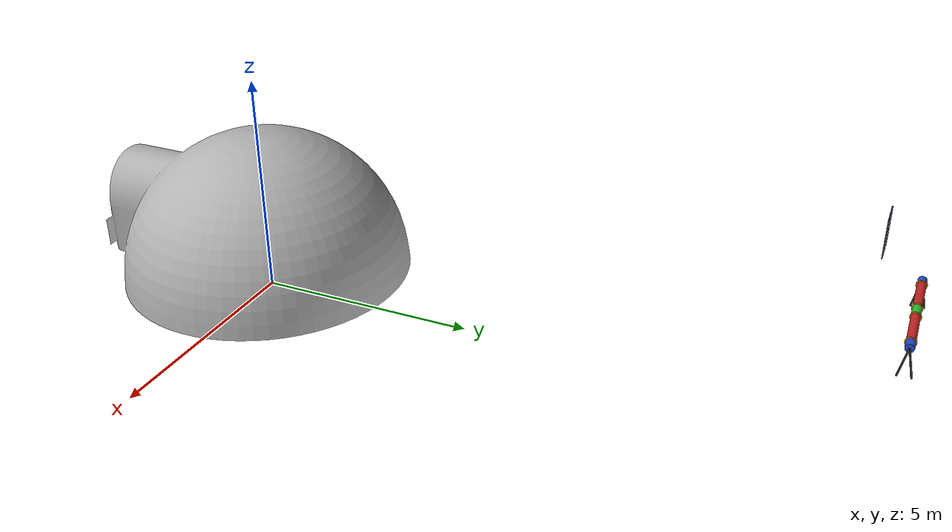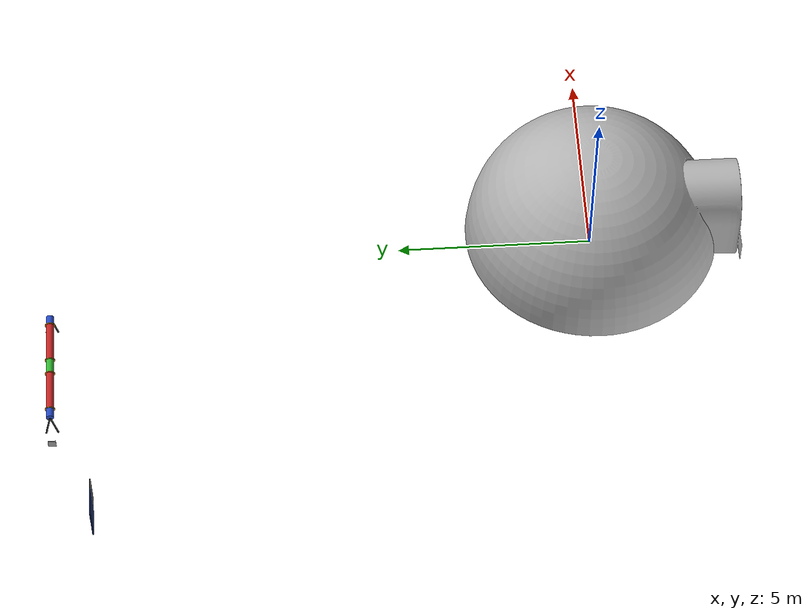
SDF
<sdf version="1.9">
 <world name="moon">
  <gravity>0 0 -9.8</gravity>
  <physics name="physics" type="dart">
   <max_step_size>0.01</max_step_size>
   <real_time_factor>1.0</real_time_factor>
  </physics>
  <light type="directional" name="sun">
   <pose>0 0 10000 0 0 0</pose>
   <diffuse>1.0 1.0 1.0 1.0</diffuse>
   <specular>0.2 0.2 0.2 1.0</specular>
   <attenuation>
    <range>100000</range>
    <constant>0.9</constant>
    <linear>0.01</linear>
    <quadratic>0.001</quadratic>
   </attenuation>
   <direction>-0.5 0.1 -1.0</direction>
  </light>
  <model name="moon_airlock">
   <static>true</static>
   <pose>0 0 00.5 1.5708 0 -1.5708</pose>
   <link name="airlock_link">
    <visual name="airlock_visual">
     <geometry>
      <mesh><uri>../models/gale_crater_patch2/meshes/dome.obj</uri><scale>0.82 0.82 0.82</scale></mesh>
     </geometry>
    </visual>
    <collision name="airlock_collision"><geometry><box><size>3.0 3.0 2.0</size></box></geometry></collision>
   </link>
  </model>
  <model name="arc26_pipe_collaboration_mission">
   <pose>-5.0 14.0 0 0 0 0</pose>
   <static>true</static>
   <link name="left_support">
    <visual name="left_leg_outer_visual">
     <pose>0 -0.075 0.35 -0.211 0 0</pose>
     <geometry><cylinder><radius>0.02</radius><length>0.716</length></cylinder></geometry>
     <material><ambient>0.15 0.15 0.15 1</ambient><diffuse>0.2 0.2 0.2 1</diffuse></material>
    </visual>
    <collision name="left_leg_outer_collision">
     <pose>0 -0.075 0.35 -0.211 0 0</pose>
     <geometry><cylinder><radius>0.02</radius><length>0.716</length></cylinder></geometry>
    </collision>
    <visual name="left_leg_inner_visual">
     <pose>0 0.075 0.35 0.211 0 0</pose>
     <geometry><cylinder><radius>0.02</radius><length>0.716</length></cylinder></geometry>
     <material><ambient>0.15 0.15 0.15 1</ambient><diffuse>0.2 0.2 0.2 1</diffuse></material>
    </visual>
    <collision name="left_leg_inner_collision">
     <pose>0 0.075 0.35 0.211 0 0</pose>
     <geometry><cylinder><radius>0.02</radius><length>0.716</length></cylinder></geometry>
    </collision>
   </link>
   <link name="right_support">
    <pose>3.0 0 0 0 0 0</pose>
    <visual name="right_leg_outer_visual">
     <pose>0 -0.075 0.35 -0.211 0 0</pose>
     <geometry><cylinder><radius>0.02</radius><length>0.716</length></cylinder></geometry>
     <material><ambient>0.15 0.15 0.15 1</ambient><diffuse>0.2 0.2 0.2 1</diffuse></material>
    </visual>
    <collision name="right_leg_outer_collision">
     <pose>0 -0.075 0.35 -0.211 0 0</pose>
     <geometry><cylinder><radius>0.02</radius><length>0.716</length></cylinder></geometry>
    </collision>
    <visual name="right_leg_inner_visual">
     <pose>0 0.075 0.35 0.211 0 0</pose>
     <geometry><cylinder><radius>0.02</radius><length>0.716</length></cylinder></geometry>
     <material><ambient>0.15 0.15 0.15 1</ambient><diffuse>0.2 0.2 0.2 1</diffuse></material>
    </visual>
    <collision name="right_leg_inner_collision">
     <pose>0 0.075 0.35 0.211 0 0</pose>
     <geometry><cylinder><radius>0.02</radius><length>0.716</length></cylinder></geometry>
    </collision>
   </link>
   <link name="pipe_segment_0">
    <pose>0.12 0 0.7 0 1.5708 0</pose>
    <visual name="visual">
     <geometry><cylinder><radius>0.1</radius><length>0.24</length></cylinder></geometry>
     <material><ambient>0.1 0.2 0.6 1</ambient><diffuse>0.15 0.3 0.8 1</diffuse></material>
    </visual>
    <collision name="collision">
     <geometry><cylinder><radius>0.1</radius><length>0.24</length></cylinder></geometry>
    </collision>
   </link>
   <link name="coupling_1">
    <pose>0.25 0 0.7 0 1.5708 0</pose>
    <visual name="visual">
     <geometry><cylinder><radius>0.125</radius><length>0.02</length></cylinder></geometry>
     <material><ambient>0.9 0.55 0.1 1</ambient><diffuse>1.0 0.65 0.15 1</diffuse></material>
    </visual>
    <collision name="collision">
     <geometry><cylinder><radius>0.125</radius><length>0.02</length></cylinder></geometry>
    </collision>
   </link>
   <link name="pipe_segment_1">
    <pose>0.775 0 0.7 0 1.5708 0</pose>
    <visual name="visual">
     <geometry><cylinder><radius>0.1</radius><length>1.03</length></cylinder></geometry>
     <material><ambient>0.6 0.1 0.1 1</ambient><diffuse>0.8 0.15 0.15 1</diffuse></material>
    </visual>
    <collision name="collision">
     <geometry><cylinder><radius>0.1</radius><length>1.03</length></cylinder></geometry>
    </collision>
   </link>
   <link name="coupling_2">
    <pose>1.3 0 0.7 0 1.5708 0</pose>
    <visual name="visual">
     <geometry><cylinder><radius>0.125</radius><length>0.02</length></cylinder></geometry>
     <material><ambient>0.9 0.55 0.1 1</ambient><diffuse>1.0 0.65 0.15 1</diffuse></material>
    </visual>
    <collision name="collision">
     <geometry><cylinder><radius>0.125</radius><length>0.02</length></cylinder></geometry>
    </collision>
   </link>
   <link name="pipe_segment_2">
    <pose>1.5 0 0.7 0 1.5708 0</pose>
    <visual name="visual">
     <geometry><cylinder><radius>0.1</radius><length>0.38</length></cylinder></geometry>
     <material><ambient>0.15 0.55 0.15 1</ambient><diffuse>0.2 0.75 0.2 1</diffuse></material>
    </visual>
    <collision name="collision">
     <geometry><cylinder><radius>0.1</radius><length>0.38</length></cylinder></geometry>
    </collision>
   </link>
   <link name="coupling_3">
    <pose>1.7 0 0.7 0 1.5708 0</pose>
    <visual name="visual">
     <geometry><cylinder><radius>0.125</radius><length>0.02</length></cylinder></geometry>
     <material><ambient>0.9 0.55 0.1 1</ambient><diffuse>1.0 0.65 0.15 1</diffuse></material>
    </visual>
    <collision name="collision">
     <geometry><cylinder><radius>0.125</radius><length>0.02</length></cylinder></geometry>
    </collision>
   </link>
   <link name="pipe_segment_3">
    <pose>2.225 0 0.7 0 1.5708 0</pose>
    <visual name="visual">
     <geometry><cylinder><radius>0.1</radius><length>1.03</length></cylinder></geometry>
     <material><ambient>0.6 0.1 0.1 1</ambient><diffuse>0.8 0.15 0.15 1</diffuse></material>
    </visual>
    <collision name="collision">
     <geometry><cylinder><radius>0.1</radius><length>1.03</length></cylinder></geometry>
    </collision>
   </link>
   <link name="coupling_4">
    <pose>2.75 0 0.7 0 1.5708 0</pose>
    <visual name="visual">
     <geometry><cylinder><radius>0.125</radius><length>0.02</length></cylinder></geometry>
     <material><ambient>0.9 0.55 0.1 1</ambient><diffuse>1.0 0.65 0.15 1</diffuse></material>
    </visual>
    <collision name="collision">
     <geometry><cylinder><radius>0.125</radius><length>0.02</length></cylinder></geometry>
    </collision>
   </link>
   <link name="pipe_segment_4">
    <pose>2.88 0 0.7 0 1.5708 0</pose>
    <visual name="visual">
     <geometry><cylinder><radius>0.1</radius><length>0.24</length></cylinder></geometry>
     <material><ambient>0.1 0.2 0.6 1</ambient><diffuse>0.15 0.3 0.8 1</diffuse></material>
    </visual>
    <collision name="collision">
     <geometry><cylinder><radius>0.1</radius><length>0.24</length></cylinder></geometry>
    </collision>
   </link>
   <link name="clamp_bracket_detail">
    <pose>-0.4 0 0.1175 0 0 0</pose>
    <visual name="visual">
     <geometry><box><size>0.02 0.2 0.235</size></box></geometry>
     <material><ambient>0.5 0.5 0.5 1</ambient><diffuse>0.6 0.6 0.6 1</diffuse></material>
    </visual>
    <collision name="collision"><geometry><box><size>0.02 0.2 0.235</size></box></geometry></collision>
   </link>
  </model>
  <model name="arc26_solar_panel_collaboration_mission">
   <pose>-8.0 13.0 0 0 0 0</pose>
   <static>true</static>
   <link name="pv_cell_array">
    <pose>0.375 0 0.5 0 0 0</pose>
    <visual name="cell_area_base_visual">
     <geometry><box><size>0.75 0.03 1.0</size></box></geometry>
     <material>
      <ambient>0.05 0.10 0.25 1</ambient>
      <diffuse>0.08 0.15 0.35 1</diffuse>
      <specular>0.3 0.3 0.4 1</specular>
     </material>
    </visual>
    <collision name="cell_area_collision"><geometry><box><size>0.75 0.03 1.0</size></box></geometry></collision>
    <visual name="grid_line_v1">
     <pose>-0.125 0.0165 0 0 0 0</pose>
     <geometry><box><size>0.01 0.005 1.0</size></box></geometry>
     <material><ambient>0.8 0.8 0.8 1</ambient><diffuse>0.9 0.9 0.9 1</diffuse></material>
    </visual>
    <visual name="grid_line_v2">
     <pose>0.125 0.0165 0 0 0 0</pose>
     <geometry><box><size>0.01 0.005 1.0</size></box></geometry>
     <material><ambient>0.8 0.8 0.8 1</ambient><diffuse>0.9 0.9 0.9 1</diffuse></material>
    </visual>
    <visual name="grid_line_h1">
     <pose>0 0.0165 -0.25 0 0 0</pose>
     <geometry><box><size>0.75 0.005 0.01</size></box></geometry>
     <material><ambient>0.8 0.8 0.8 1</ambient><diffuse>0.9 0.9 0.9 1</diffuse></material>
    </visual>
    <visual name="grid_line_h2">
     <pose>0 0.0165 0 0 0 0</pose>
     <geometry><box><size>0.75 0.005 0.01</size></box></geometry>
     <material><ambient>0.8 0.8 0.8 1</ambient><diffuse>0.9 0.9 0.9 1</diffuse></material>
    </visual>
    <visual name="grid_line_h3">
     <pose>0 0.0165 0.25 0 0 0</pose>
     <geometry><box><size>0.75 0.005 0.01</size></box></geometry>
     <material><ambient>0.8 0.8 0.8 1</ambient><diffuse>0.9 0.9 0.9 1</diffuse></material>
    </visual>
   </link>
   <link name="branding_strip">
    <pose>0.875 0 0.5 0 0 0</pose>
    <visual name="visual">
     <geometry><box><size>0.25 0.03 1.0</size></box></geometry>
     <material><ambient>0.08 0.08 0.08 1</ambient><diffuse>0.12 0.12 0.12 1</diffuse></material>
    </visual>
    <collision name="collision"><geometry><box><size>0.25 0.03 1.0</size></box></geometry></collision>
   </link>
  </model>
 </world>
</sdf>
